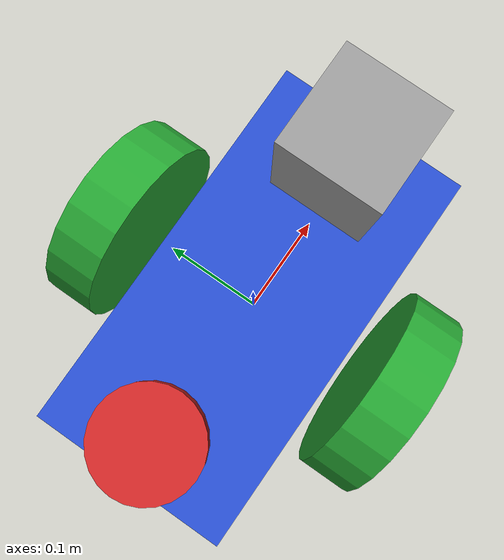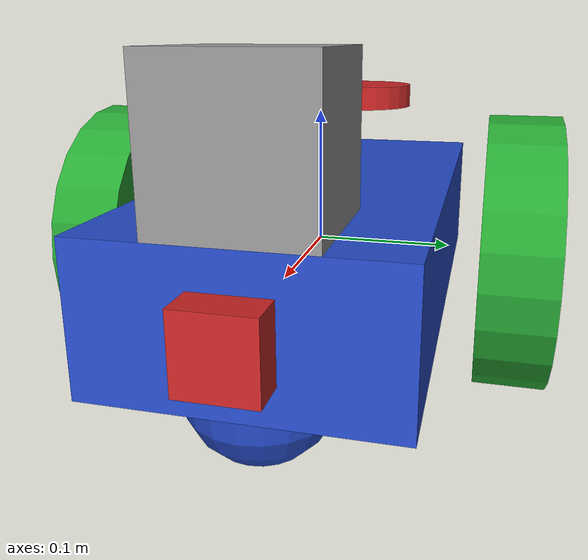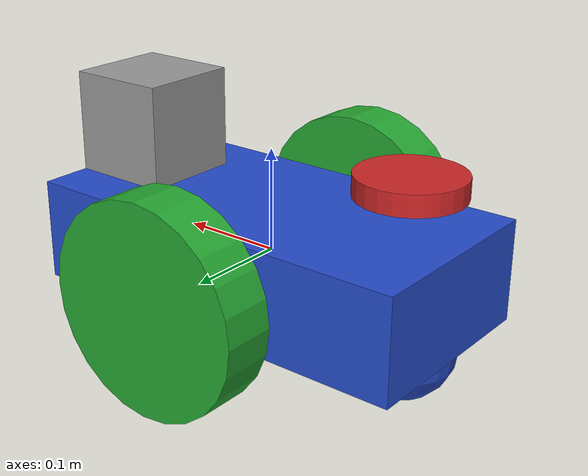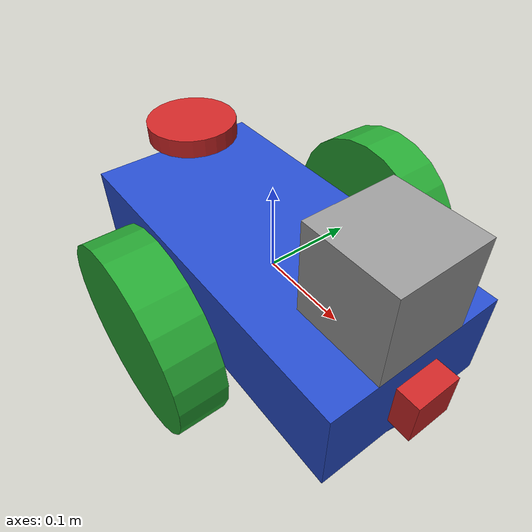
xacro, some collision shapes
<?xml version='1.0'?>

<robot name="my_robot" xmlns:xacro="http://www.ros.org/wiki/xacro">
  <xacro:include filename="$(find my_robot)/urdf/my_robot.gazebo" />

  <link name="robot_footprint"></link>

  <joint name="robot_footprint_joint" type="fixed">
    <origin xyz="0 0 0" rpy="0 0 0" />
    <parent link="robot_footprint"/>
    <child link="chassis" />
  </joint>

  <link name='chassis'>
    <pose>0 0 0.1 0 0 0</pose>
    <inertial>
      <mass value="15.0"/>
      <origin xyz="0 0 0" rpy="0 0 0"/>
      <inertia
          ixx="0.1" ixy="0" ixz="0"
          iyy="0.1" iyz="0"
          izz="0.1"
      />
    </inertial>

    <collision name='chassis_collision'>
      <origin xyz="0 0 0" rpy="0 0 0"/>
      <geometry>
        <box size=".4 .2 .1"/>
      </geometry>
    </collision>

    <visual name='chassis_visual'>
      <origin xyz="0 0 0" rpy="0 0 0"/>
      <geometry>
        <box size=".4 .2 .1"/>
      </geometry>
    </visual>

    <collision name='back_caster_collision'>
      <origin xyz="-0.15 0 -0.05" rpy=" 0 0 0"/>
      <geometry>
        <sphere radius="0.0499"/>
      </geometry>
    </collision>

    <visual name='back_caster_visual'>
      <origin xyz="-0.15 0 -0.05" rpy=" 0 0 0"/>
      <geometry>
        <sphere radius="0.05"/>
      </geometry>
    </visual>

    <collision name='front_caster_collision'>
      <origin xyz="0.15 0 -0.05" rpy=" 0 0 0"/>
      <geometry>
        <sphere radius="0.0499"/>
      </geometry>
    </collision>

    <visual name='front_caster_visual'>
      <origin xyz="0.15 0 -0.05" rpy=" 0 0 0"/>
      <geometry>
        <sphere radius="0.05"/>
      </geometry>
    </visual>

  </link>

  <link name='top_siren'>
    <inertial>
      <mass value="0.3"/>
      <inertia
          ixx="0.1" ixy="0" ixz="0"
          iyy="0.1" iyz="0"
          izz="0.1"
      />
    </inertial>

    <visual name='top_siren_visual'>
      <origin xyz="0 0 0" rpy="0 0 0"/>
      <geometry>
        <cylinder radius="0.05" length="0.02"/>
      </geometry>
    </visual>

    <collision name='top_siren_visual'>
      <origin xyz="0 0 0" rpy="0 0 0"/>
      <geometry>
        <cylinder radius="0.05" length="0.02"/>
      </geometry>
    </collision>
  </link>

  <joint type="fixed" name="top_siren_joint">
    <origin xyz="-0.15 0 0.1" rpy="0 0 0"/>
    <child link="top_siren"/>
    <parent link="chassis"/>
    <axis xyz="0 0 1" rpy="0 0 0"/>
  </joint>

  <link name='left_wheel'>
    <inertial>
      <mass value="5"/>
      <inertia
          ixx="0.1" ixy="0" ixz="0"
          iyy="0.1" iyz="0"
          izz="0.1"
      />
    </inertial>

    <visual name='left_wheel_visual'>
      <origin xyz="0 0 0" rpy="0 1.5707 1.5707"/>
      <geometry>
        <cylinder radius="0.1" length="0.05"/>
      </geometry>
    </visual>

    <collision name='left_wheel_collision'>
      <origin xyz="0 0 0" rpy="0 1.5707 1.5707"/>
      <geometry>
        <cylinder radius="0.1" length="0.05"/>
      </geometry>
    </collision>
  </link>

  <link name='right_wheel'>
    <inertial>
      <mass value="5"/>
      <inertia
          ixx="0.1" ixy="0" ixz="0"
          iyy="0.1" iyz="0"
          izz="0.1"
      />
    </inertial>

    <visual name='right_wheel_visual'>
      <origin xyz="0 0 0" rpy="0 1.5707 1.5707"/>
      <geometry>
        <cylinder radius="0.1" length="0.05"/>
      </geometry>
    </visual>

    <collision name='right_wheel_collision'>
      <origin xyz="0 0 0" rpy="0 1.5707 1.5707"/>
      <geometry>
        <cylinder radius="0.1" length="0.05"/>
      </geometry>
    </collision>
  </link>

  <joint type="continuous" name="left_wheel_hinge">
    <origin xyz="0 0.15 0" rpy="0 0 0"/>
    <child link="left_wheel"/>
    <parent link="chassis"/>
    <axis xyz="0 1 0" rpy="0 0 0"/>
    <limit effort="10000" velocity="1000"/>
    <dynamics damping="1.0" friction="1.0"/>
  </joint>

  <joint type="continuous" name="right_wheel_hinge">
    <origin xyz="0 -0.15 0" rpy="0 0 0"/>
    <child link="right_wheel"/>
    <parent link="chassis"/>
    <axis xyz="0 1 0" rpy="0 0 0"/>
    <limit effort="10000" velocity="1000"/>
    <dynamics damping="1.0" friction="1.0"/>
  </joint>

  <link name='camera'>
    <pose>0 0 0 0 0 0</pose>
    <inertial>
      <mass value="0.1"/>
      <origin xyz="0.0 0 0" rpy=" 0 0 0"/>
      <box_inertia m="0.1" x="0.05" y="0.05" z="0.05"/>
      <inertia
          ixx="1e-6" ixy="0" ixz="0"
          iyy="1e-6" iyz="0"
          izz="1e-6"
      />
    </inertial>

    <collision name='camera_collision'>
      <origin xyz="0 0 0" rpy=" 0 0 0"/>
      <geometry>
        <box size="0.05 0.05 0.05"/>
      </geometry>
    </collision>

    <visual name='camera_visual'>
      <origin xyz="0 0 0" rpy=" 0 0 0"/>
      <geometry>
        <box size="0.05 0.05 0.05"/>
      </geometry>
    </visual>
  </link>

  <joint type="fixed" name="camera_joint">
    <origin xyz="0.2 0 0" rpy="0 0 0"/>
    <child link="camera"/>
    <parent link="chassis"/>
    <axis xyz="0 1 0" rpy="0 0 0"/>
  </joint>

  <link name='hokuyo'>
    <pose>0 0 0 0 0 0</pose>

    <inertial>
      <mass value="1e-5"/>
      <origin xyz="0.0 0 0" rpy=" 0 0 0"/>
      <inertia
          ixx="1e-6" ixy="0" ixz="0"
          iyy="1e-6" iyz="0"
          izz="1e-6"
      />
    </inertial>

    <collision name='hokuyo_collision'>
      <origin xyz="0 0 0" rpy=" 0 0 0"/>
      <geometry>
        <box size="0.1 0.1 0.1"/>
      </geometry>
    </collision>

    <visual name='hokuyo_visual'>
      <origin xyz="0 0 0" rpy=" 0 0 0"/>
      <geometry>
        <mesh filename="package://my_robot/meshes/hokuyo.dae"/>
      </geometry>
    </visual>
  </link>

  <joint type="fixed" name="hokuyo_joint">
    <origin xyz="0.15 0 0.1" rpy="0 0 0"/>
    <child link="hokuyo"/>
    <parent link="chassis"/>
    <axis xyz="0 1 0" rpy="0 0 0"/>
  </joint>

  <joint name="camera_optical_joint" type="fixed">
    <origin xyz="0 0 0" rpy="-1.5707 0 -1.5707"/>
    <parent link="camera"/>
    <child link="camera_link_optical"/>
  </joint>

  <link name="camera_link_optical">
  </link>

  <gazebo reference="chassis">
    <material>Gazebo/Blue</material>
  </gazebo>

  <gazebo reference="left_wheel">
    <material>Gazebo/Green</material>
  </gazebo>

  <gazebo reference="right_wheel">
    <material>Gazebo/Green</material>
  </gazebo>

  <gazebo reference="camera">
    <material>Gazebo/Red</material>
  </gazebo>

  <gazebo reference="hokuyo">
    <material>Gazebo/Gray</material>
  </gazebo>

  <gazebo reference="top_siren">
    <material>Gazebo/Red</material>
  </gazebo>
</robot>
